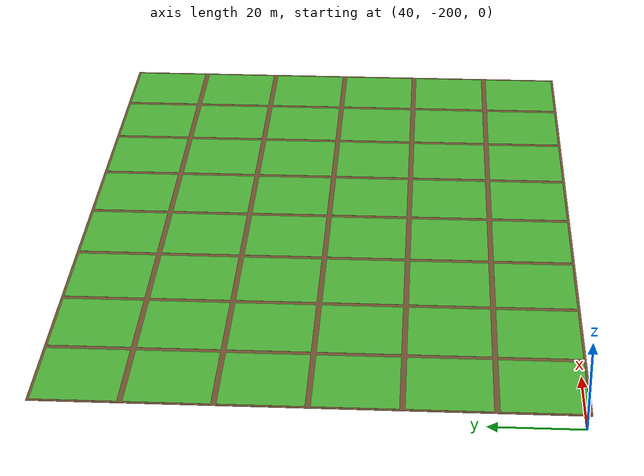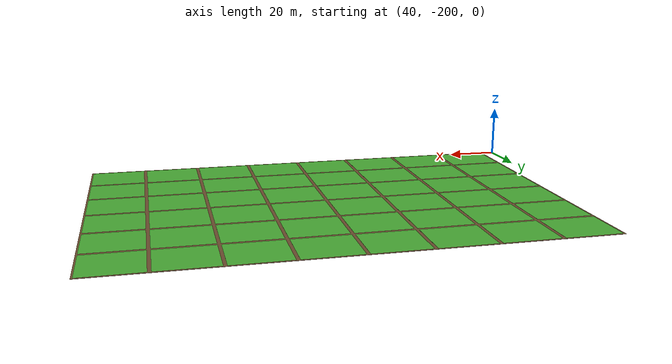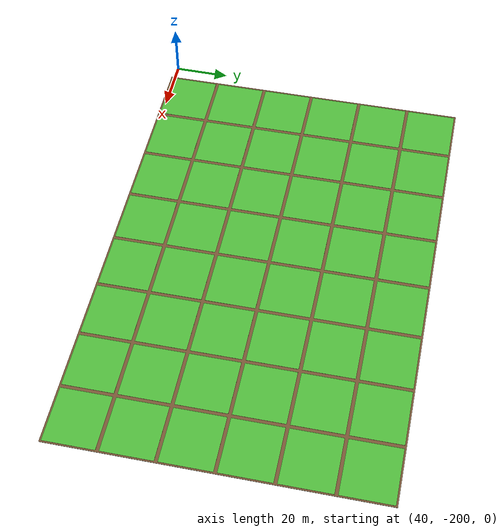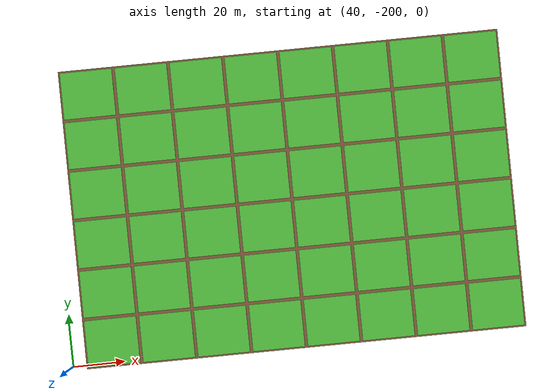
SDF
<sdf version="1.9">
 <world name="agricultural_field">
  <model name="sawah_tengah_bawah">
   <static>true</static>
   <pose>130 -144 0 0 0 0</pose>
   <link name="link">
    <visual name="soil_base">
     <geometry><box><size>170.00 115.00 0.10</size></box></geometry>
     <material><ambient>0.35 0.25 0.15 1</ambient><diffuse>0.45 0.32 0.20 1</diffuse></material>
    </visual>
    <visual name="plot_0">
     <pose>-74.38 -47.92 0.060 0 0 0</pose>
     <geometry><box><size>20.05 17.97 0.02</size></box></geometry>
     <material><ambient>0.20 0.50 0.15 1</ambient><diffuse>0.30 0.70 0.22 1</diffuse></material>
    </visual>
    <visual name="plot_1">
     <pose>-74.38 -28.75 0.060 0 0 0</pose>
     <geometry><box><size>20.05 17.97 0.02</size></box></geometry>
     <material><ambient>0.20 0.50 0.15 1</ambient><diffuse>0.30 0.70 0.22 1</diffuse></material>
    </visual>
    <visual name="plot_2">
     <pose>-74.38 -9.58 0.060 0 0 0</pose>
     <geometry><box><size>20.05 17.97 0.02</size></box></geometry>
     <material><ambient>0.20 0.50 0.15 1</ambient><diffuse>0.30 0.70 0.22 1</diffuse></material>
    </visual>
    <visual name="plot_3">
     <pose>-74.38 9.58 0.060 0 0 0</pose>
     <geometry><box><size>20.05 17.97 0.02</size></box></geometry>
     <material><ambient>0.20 0.50 0.15 1</ambient><diffuse>0.30 0.70 0.22 1</diffuse></material>
    </visual>
    <visual name="plot_4">
     <pose>-74.38 28.75 0.060 0 0 0</pose>
     <geometry><box><size>20.05 17.97 0.02</size></box></geometry>
     <material><ambient>0.20 0.50 0.15 1</ambient><diffuse>0.30 0.70 0.22 1</diffuse></material>
    </visual>
    <visual name="plot_5">
     <pose>-74.38 47.92 0.060 0 0 0</pose>
     <geometry><box><size>20.05 17.97 0.02</size></box></geometry>
     <material><ambient>0.20 0.50 0.15 1</ambient><diffuse>0.30 0.70 0.22 1</diffuse></material>
    </visual>
    <visual name="plot_6">
     <pose>-53.12 -47.92 0.060 0 0 0</pose>
     <geometry><box><size>20.05 17.97 0.02</size></box></geometry>
     <material><ambient>0.20 0.50 0.15 1</ambient><diffuse>0.30 0.70 0.22 1</diffuse></material>
    </visual>
    <visual name="plot_7">
     <pose>-53.12 -28.75 0.060 0 0 0</pose>
     <geometry><box><size>20.05 17.97 0.02</size></box></geometry>
     <material><ambient>0.20 0.50 0.15 1</ambient><diffuse>0.30 0.70 0.22 1</diffuse></material>
    </visual>
    <visual name="plot_8">
     <pose>-53.12 -9.58 0.060 0 0 0</pose>
     <geometry><box><size>20.05 17.97 0.02</size></box></geometry>
     <material><ambient>0.20 0.50 0.15 1</ambient><diffuse>0.30 0.70 0.22 1</diffuse></material>
    </visual>
    <visual name="plot_9">
     <pose>-53.12 9.58 0.060 0 0 0</pose>
     <geometry><box><size>20.05 17.97 0.02</size></box></geometry>
     <material><ambient>0.20 0.50 0.15 1</ambient><diffuse>0.30 0.70 0.22 1</diffuse></material>
    </visual>
    <visual name="plot_10">
     <pose>-53.12 28.75 0.060 0 0 0</pose>
     <geometry><box><size>20.05 17.97 0.02</size></box></geometry>
     <material><ambient>0.20 0.50 0.15 1</ambient><diffuse>0.30 0.70 0.22 1</diffuse></material>
    </visual>
    <visual name="plot_11">
     <pose>-53.12 47.92 0.060 0 0 0</pose>
     <geometry><box><size>20.05 17.97 0.02</size></box></geometry>
     <material><ambient>0.20 0.50 0.15 1</ambient><diffuse>0.30 0.70 0.22 1</diffuse></material>
    </visual>
    <visual name="plot_12">
     <pose>-31.88 -47.92 0.060 0 0 0</pose>
     <geometry><box><size>20.05 17.97 0.02</size></box></geometry>
     <material><ambient>0.20 0.50 0.15 1</ambient><diffuse>0.30 0.70 0.22 1</diffuse></material>
    </visual>
    <visual name="plot_13">
     <pose>-31.88 -28.75 0.060 0 0 0</pose>
     <geometry><box><size>20.05 17.97 0.02</size></box></geometry>
     <material><ambient>0.20 0.50 0.15 1</ambient><diffuse>0.30 0.70 0.22 1</diffuse></material>
    </visual>
    <visual name="plot_14">
     <pose>-31.88 -9.58 0.060 0 0 0</pose>
     <geometry><box><size>20.05 17.97 0.02</size></box></geometry>
     <material><ambient>0.20 0.50 0.15 1</ambient><diffuse>0.30 0.70 0.22 1</diffuse></material>
    </visual>
    <visual name="plot_15">
     <pose>-31.88 9.58 0.060 0 0 0</pose>
     <geometry><box><size>20.05 17.97 0.02</size></box></geometry>
     <material><ambient>0.20 0.50 0.15 1</ambient><diffuse>0.30 0.70 0.22 1</diffuse></material>
    </visual>
    <visual name="plot_16">
     <pose>-31.88 28.75 0.060 0 0 0</pose>
     <geometry><box><size>20.05 17.97 0.02</size></box></geometry>
     <material><ambient>0.20 0.50 0.15 1</ambient><diffuse>0.30 0.70 0.22 1</diffuse></material>
    </visual>
    <visual name="plot_17">
     <pose>-31.88 47.92 0.060 0 0 0</pose>
     <geometry><box><size>20.05 17.97 0.02</size></box></geometry>
     <material><ambient>0.20 0.50 0.15 1</ambient><diffuse>0.30 0.70 0.22 1</diffuse></material>
    </visual>
    <visual name="plot_18">
     <pose>-10.62 -47.92 0.060 0 0 0</pose>
     <geometry><box><size>20.05 17.97 0.02</size></box></geometry>
     <material><ambient>0.20 0.50 0.15 1</ambient><diffuse>0.30 0.70 0.22 1</diffuse></material>
    </visual>
    <visual name="plot_19">
     <pose>-10.62 -28.75 0.060 0 0 0</pose>
     <geometry><box><size>20.05 17.97 0.02</size></box></geometry>
     <material><ambient>0.20 0.50 0.15 1</ambient><diffuse>0.30 0.70 0.22 1</diffuse></material>
    </visual>
    <visual name="plot_20">
     <pose>-10.62 -9.58 0.060 0 0 0</pose>
     <geometry><box><size>20.05 17.97 0.02</size></box></geometry>
     <material><ambient>0.20 0.50 0.15 1</ambient><diffuse>0.30 0.70 0.22 1</diffuse></material>
    </visual>
    <visual name="plot_21">
     <pose>-10.62 9.58 0.060 0 0 0</pose>
     <geometry><box><size>20.05 17.97 0.02</size></box></geometry>
     <material><ambient>0.20 0.50 0.15 1</ambient><diffuse>0.30 0.70 0.22 1</diffuse></material>
    </visual>
    <visual name="plot_22">
     <pose>-10.62 28.75 0.060 0 0 0</pose>
     <geometry><box><size>20.05 17.97 0.02</size></box></geometry>
     <material><ambient>0.20 0.50 0.15 1</ambient><diffuse>0.30 0.70 0.22 1</diffuse></material>
    </visual>
    <visual name="plot_23">
     <pose>-10.62 47.92 0.060 0 0 0</pose>
     <geometry><box><size>20.05 17.97 0.02</size></box></geometry>
     <material><ambient>0.20 0.50 0.15 1</ambient><diffuse>0.30 0.70 0.22 1</diffuse></material>
    </visual>
    <visual name="plot_24">
     <pose>10.62 -47.92 0.060 0 0 0</pose>
     <geometry><box><size>20.05 17.97 0.02</size></box></geometry>
     <material><ambient>0.20 0.50 0.15 1</ambient><diffuse>0.30 0.70 0.22 1</diffuse></material>
    </visual>
    <visual name="plot_25">
     <pose>10.62 -28.75 0.060 0 0 0</pose>
     <geometry><box><size>20.05 17.97 0.02</size></box></geometry>
     <material><ambient>0.20 0.50 0.15 1</ambient><diffuse>0.30 0.70 0.22 1</diffuse></material>
    </visual>
    <visual name="plot_26">
     <pose>10.62 -9.58 0.060 0 0 0</pose>
     <geometry><box><size>20.05 17.97 0.02</size></box></geometry>
     <material><ambient>0.20 0.50 0.15 1</ambient><diffuse>0.30 0.70 0.22 1</diffuse></material>
    </visual>
    <visual name="plot_27">
     <pose>10.62 9.58 0.060 0 0 0</pose>
     <geometry><box><size>20.05 17.97 0.02</size></box></geometry>
     <material><ambient>0.20 0.50 0.15 1</ambient><diffuse>0.30 0.70 0.22 1</diffuse></material>
    </visual>
    <visual name="plot_28">
     <pose>10.62 28.75 0.060 0 0 0</pose>
     <geometry><box><size>20.05 17.97 0.02</size></box></geometry>
     <material><ambient>0.20 0.50 0.15 1</ambient><diffuse>0.30 0.70 0.22 1</diffuse></material>
    </visual>
    <visual name="plot_29">
     <pose>10.62 47.92 0.060 0 0 0</pose>
     <geometry><box><size>20.05 17.97 0.02</size></box></geometry>
     <material><ambient>0.20 0.50 0.15 1</ambient><diffuse>0.30 0.70 0.22 1</diffuse></material>
    </visual>
    <visual name="plot_30">
     <pose>31.88 -47.92 0.060 0 0 0</pose>
     <geometry><box><size>20.05 17.97 0.02</size></box></geometry>
     <material><ambient>0.20 0.50 0.15 1</ambient><diffuse>0.30 0.70 0.22 1</diffuse></material>
    </visual>
    <visual name="plot_31">
     <pose>31.88 -28.75 0.060 0 0 0</pose>
     <geometry><box><size>20.05 17.97 0.02</size></box></geometry>
     <material><ambient>0.20 0.50 0.15 1</ambient><diffuse>0.30 0.70 0.22 1</diffuse></material>
    </visual>
    <visual name="plot_32">
     <pose>31.88 -9.58 0.060 0 0 0</pose>
     <geometry><box><size>20.05 17.97 0.02</size></box></geometry>
     <material><ambient>0.20 0.50 0.15 1</ambient><diffuse>0.30 0.70 0.22 1</diffuse></material>
    </visual>
    <visual name="plot_33">
     <pose>31.88 9.58 0.060 0 0 0</pose>
     <geometry><box><size>20.05 17.97 0.02</size></box></geometry>
     <material><ambient>0.20 0.50 0.15 1</ambient><diffuse>0.30 0.70 0.22 1</diffuse></material>
    </visual>
    <visual name="plot_34">
     <pose>31.88 28.75 0.060 0 0 0</pose>
     <geometry><box><size>20.05 17.97 0.02</size></box></geometry>
     <material><ambient>0.20 0.50 0.15 1</ambient><diffuse>0.30 0.70 0.22 1</diffuse></material>
    </visual>
    <visual name="plot_35">
     <pose>31.88 47.92 0.060 0 0 0</pose>
     <geometry><box><size>20.05 17.97 0.02</size></box></geometry>
     <material><ambient>0.20 0.50 0.15 1</ambient><diffuse>0.30 0.70 0.22 1</diffuse></material>
    </visual>
    <visual name="plot_36">
     <pose>53.12 -47.92 0.060 0 0 0</pose>
     <geometry><box><size>20.05 17.97 0.02</size></box></geometry>
     <material><ambient>0.20 0.50 0.15 1</ambient><diffuse>0.30 0.70 0.22 1</diffuse></material>
    </visual>
    <visual name="plot_37">
     <pose>53.12 -28.75 0.060 0 0 0</pose>
     <geometry><box><size>20.05 17.97 0.02</size></box></geometry>
     <material><ambient>0.20 0.50 0.15 1</ambient><diffuse>0.30 0.70 0.22 1</diffuse></material>
    </visual>
    <visual name="plot_38">
     <pose>53.12 -9.58 0.060 0 0 0</pose>
     <geometry><box><size>20.05 17.97 0.02</size></box></geometry>
     <material><ambient>0.20 0.50 0.15 1</ambient><diffuse>0.30 0.70 0.22 1</diffuse></material>
    </visual>
    <visual name="plot_39">
     <pose>53.12 9.58 0.060 0 0 0</pose>
     <geometry><box><size>20.05 17.97 0.02</size></box></geometry>
     <material><ambient>0.20 0.50 0.15 1</ambient><diffuse>0.30 0.70 0.22 1</diffuse></material>
    </visual>
    <visual name="plot_40">
     <pose>53.12 28.75 0.060 0 0 0</pose>
     <geometry><box><size>20.05 17.97 0.02</size></box></geometry>
     <material><ambient>0.20 0.50 0.15 1</ambient><diffuse>0.30 0.70 0.22 1</diffuse></material>
    </visual>
    <visual name="plot_41">
     <pose>53.12 47.92 0.060 0 0 0</pose>
     <geometry><box><size>20.05 17.97 0.02</size></box></geometry>
     <material><ambient>0.20 0.50 0.15 1</ambient><diffuse>0.30 0.70 0.22 1</diffuse></material>
    </visual>
    <visual name="plot_42">
     <pose>74.38 -47.92 0.060 0 0 0</pose>
     <geometry><box><size>20.05 17.97 0.02</size></box></geometry>
     <material><ambient>0.20 0.50 0.15 1</ambient><diffuse>0.30 0.70 0.22 1</diffuse></material>
    </visual>
    <visual name="plot_43">
     <pose>74.38 -28.75 0.060 0 0 0</pose>
     <geometry><box><size>20.05 17.97 0.02</size></box></geometry>
     <material><ambient>0.20 0.50 0.15 1</ambient><diffuse>0.30 0.70 0.22 1</diffuse></material>
    </visual>
    <visual name="plot_44">
     <pose>74.38 -9.58 0.060 0 0 0</pose>
     <geometry><box><size>20.05 17.97 0.02</size></box></geometry>
     <material><ambient>0.20 0.50 0.15 1</ambient><diffuse>0.30 0.70 0.22 1</diffuse></material>
    </visual>
    <visual name="plot_45">
     <pose>74.38 9.58 0.060 0 0 0</pose>
     <geometry><box><size>20.05 17.97 0.02</size></box></geometry>
     <material><ambient>0.20 0.50 0.15 1</ambient><diffuse>0.30 0.70 0.22 1</diffuse></material>
    </visual>
    <visual name="plot_46">
     <pose>74.38 28.75 0.060 0 0 0</pose>
     <geometry><box><size>20.05 17.97 0.02</size></box></geometry>
     <material><ambient>0.20 0.50 0.15 1</ambient><diffuse>0.30 0.70 0.22 1</diffuse></material>
    </visual>
    <visual name="plot_47">
     <pose>74.38 47.92 0.060 0 0 0</pose>
     <geometry><box><size>20.05 17.97 0.02</size></box></geometry>
     <material><ambient>0.20 0.50 0.15 1</ambient><diffuse>0.30 0.70 0.22 1</diffuse></material>
    </visual>
    <collision name="col_4"><geometry><box><size>170 115 0.1</size></box></geometry></collision>
   </link>
  </model>
 </world>
</sdf>
